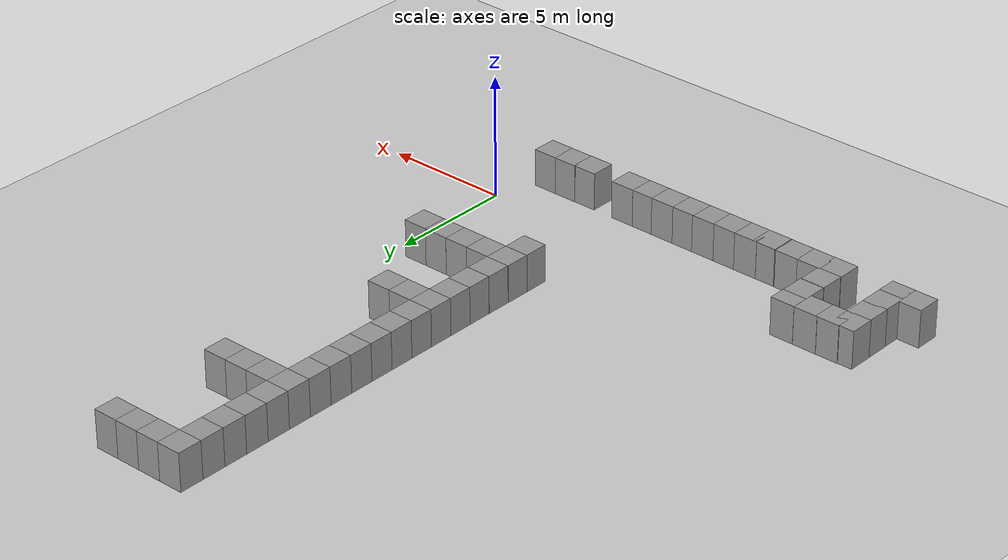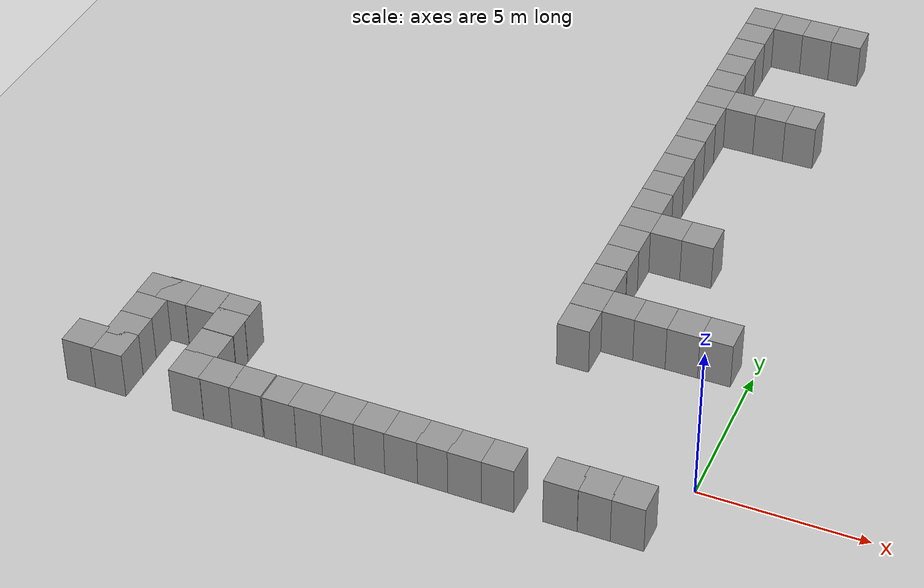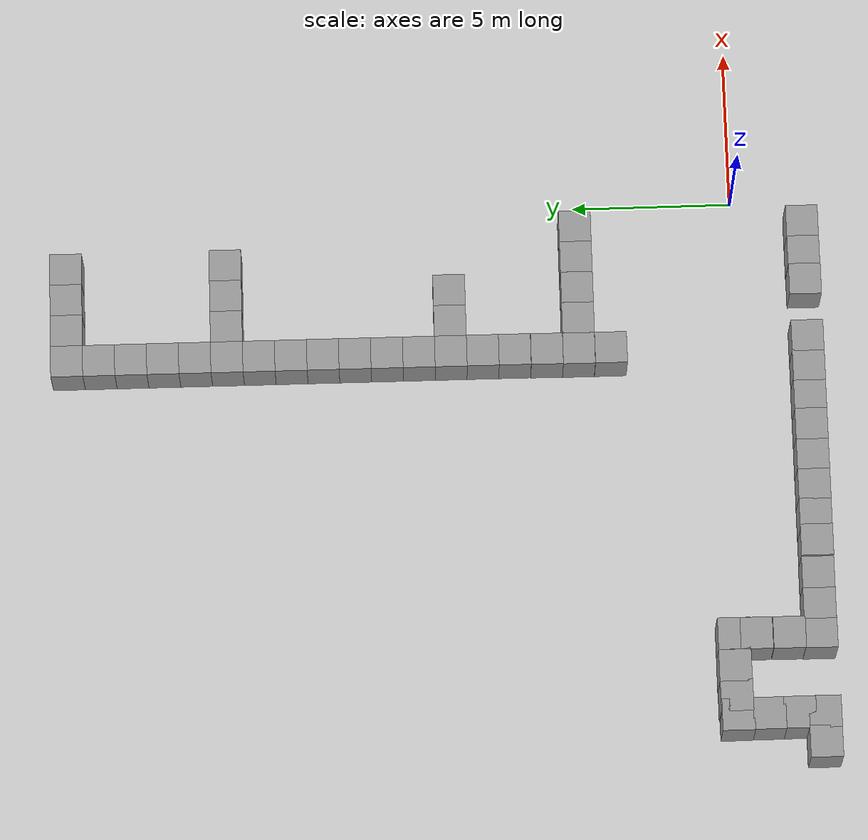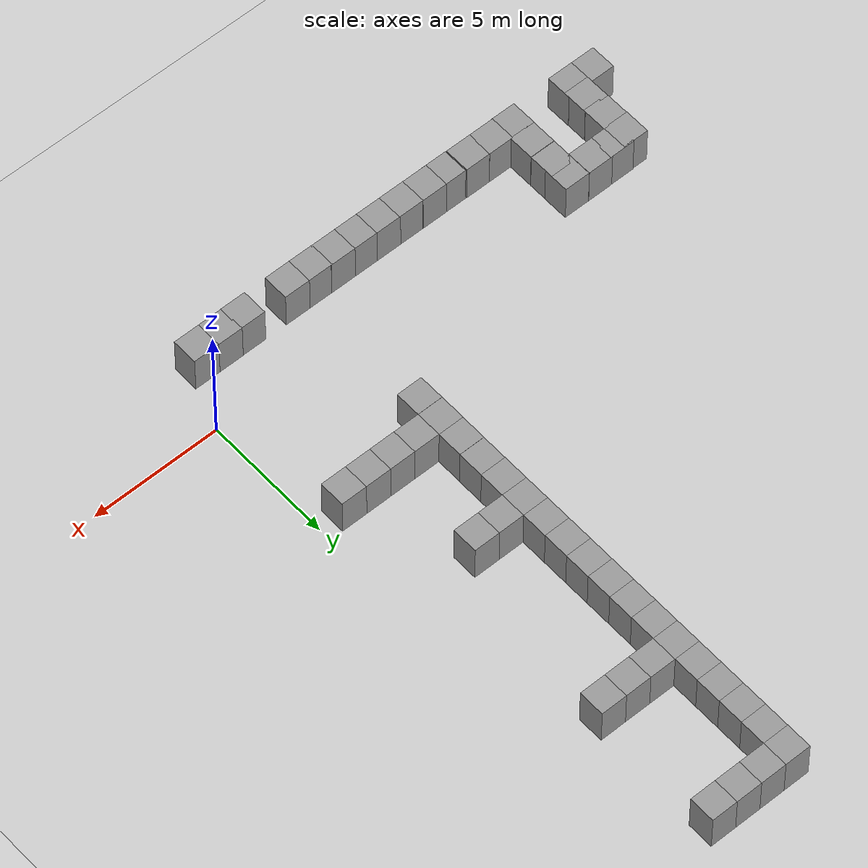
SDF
<sdf version="1.4">
 <world name="default">
  <model name="ground_plane">
   <static>1</static>
   <link name="link">
    <collision name="collision">
     <geometry><plane><normal>0 0 1</normal><size>100 100</size></plane></geometry>
     <surface><friction><ode><mu>100</mu><mu2>50</mu2></ode></friction></surface>
    </collision>
    <visual name="visual">
     <cast_shadows>0</cast_shadows>
     <geometry><plane><normal>0 0 1</normal><size>100 100</size></plane></geometry>
     <material>
      <script><uri>file://media/materials/scripts/gazebo.material</uri><name>Gazebo/Grey</name></script>
     </material>
    </visual>
    <velocity_decay><linear>0</linear><angular>0</angular></velocity_decay>
   </link>
  </model>
  <model name="unit_box_1">
   <pose>-5.01661 4.99523 0.5 0 -0 0.000223</pose>
   <static>1</static>
   <link name="link">
    <inertial>
     <mass>1</mass>
     <inertia><ixx>1</ixx><ixy>0</ixy><ixz>0</ixz><iyy>1</iyy><iyz>0</iyz><izz>1</izz></inertia>
    </inertial>
    <collision name="collision"><geometry><box><size>1 1 2</size></box></geometry></collision>
    <visual name="visual">
     <geometry><box><size>1 1 2</size></box></geometry>
     <material>
      <script><uri>file://media/materials/scripts/gazebo.material</uri><name>Gazebo/Grey</name></script>
     </material>
    </visual>
    <velocity_decay><linear>0</linear><angular>0</angular></velocity_decay>
   </link>
   <static>0</static>
  </model>
  <model name="unit_box_2">
   <pose>-4.01641 4.99001 0.5 0 -0 3e-05</pose>
   <static>1</static>
   <link name="link">
    <inertial>
     <mass>1</mass>
     <inertia><ixx>1</ixx><ixy>0</ixy><ixz>0</ixz><iyy>1</iyy><iyz>0</iyz><izz>1</izz></inertia>
    </inertial>
    <collision name="collision"><geometry><box><size>1 1 2</size></box></geometry></collision>
    <visual name="visual">
     <geometry><box><size>1 1 2</size></box></geometry>
     <material>
      <script><uri>file://media/materials/scripts/gazebo.material</uri><name>Gazebo/Grey</name></script>
     </material>
    </visual>
    <velocity_decay><linear>0</linear><angular>0</angular></velocity_decay>
   </link>
   <static>0</static>
  </model>
  <model name="unit_box_3">
   <pose>-3.0164 4.98791 0.5 0 -0 2.1e-05</pose>
   <static>1</static>
   <link name="link">
    <inertial>
     <mass>1</mass>
     <inertia><ixx>1</ixx><ixy>0</ixy><ixz>0</ixz><iyy>1</iyy><iyz>0</iyz><izz>1</izz></inertia>
    </inertial>
    <collision name="collision"><geometry><box><size>1 1 2</size></box></geometry></collision>
    <visual name="visual">
     <geometry><box><size>1 1 2</size></box></geometry>
     <material>
      <script><uri>file://media/materials/scripts/gazebo.material</uri><name>Gazebo/Grey</name></script>
     </material>
    </visual>
    <velocity_decay><linear>0</linear><angular>0</angular></velocity_decay>
   </link>
   <static>0</static>
  </model>
  <model name="unit_box_4">
   <pose>-2.01625 4.98914 0.5 0 0 -0.000278</pose>
   <static>1</static>
   <link name="link">
    <inertial>
     <mass>1</mass>
     <inertia><ixx>1</ixx><ixy>0</ixy><ixz>0</ixz><iyy>1</iyy><iyz>0</iyz><izz>1</izz></inertia>
    </inertial>
    <collision name="collision"><geometry><box><size>1 1 2</size></box></geometry></collision>
    <visual name="visual">
     <geometry><box><size>1 1 2</size></box></geometry>
     <material>
      <script><uri>file://media/materials/scripts/gazebo.material</uri><name>Gazebo/Grey</name></script>
     </material>
    </visual>
    <velocity_decay><linear>0</linear><angular>0</angular></velocity_decay>
   </link>
   <static>0</static>
  </model>
  <model name="unit_box_5">
   <pose>-1.01623 4.98884 0.5 0 0 -0.000319</pose>
   <static>1</static>
   <link name="link">
    <inertial>
     <mass>1</mass>
     <inertia><ixx>1</ixx><ixy>0</ixy><ixz>0</ixz><iyy>1</iyy><iyz>0</iyz><izz>1</izz></inertia>
    </inertial>
    <collision name="collision"><geometry><box><size>1 1 2</size></box></geometry></collision>
    <visual name="visual">
     <geometry><box><size>1 1 2</size></box></geometry>
     <material>
      <script><uri>file://media/materials/scripts/gazebo.material</uri><name>Gazebo/Grey</name></script>
     </material>
    </visual>
    <velocity_decay><linear>0</linear><angular>0</angular></velocity_decay>
   </link>
   <static>0</static>
  </model>
  <model name="unit_box_10">
   <pose>-1.02213 -2.15618 0.5 0 0 -0.000527</pose>
   <static>1</static>
   <link name="link">
    <inertial>
     <mass>1</mass>
     <inertia><ixx>1</ixx><ixy>0</ixy><ixz>0</ixz><iyy>1</iyy><iyz>0</iyz><izz>1</izz></inertia>
    </inertial>
    <collision name="collision"><geometry><box><size>1 1 2</size></box></geometry></collision>
    <visual name="visual">
     <geometry><box><size>1 1 2</size></box></geometry>
     <material>
      <script><uri>file://media/materials/scripts/gazebo.material</uri><name>Gazebo/Grey</name></script>
     </material>
    </visual>
    <velocity_decay><linear>0</linear><angular>0</angular></velocity_decay>
   </link>
   <static>0</static>
  </model>
  <model name="unit_box_11">
   <pose>-1.98593 -2.15642 0.5 0 0 -0.000466</pose>
   <static>1</static>
   <link name="link">
    <inertial>
     <mass>1</mass>
     <inertia><ixx>1</ixx><ixy>0</ixy><ixz>0</ixz><iyy>1</iyy><iyz>0</iyz><izz>1</izz></inertia>
    </inertial>
    <collision name="collision"><geometry><box><size>1 1 2</size></box></geometry></collision>
    <visual name="visual">
     <geometry><box><size>1 1 2</size></box></geometry>
     <material>
      <script><uri>file://media/materials/scripts/gazebo.material</uri><name>Gazebo/Grey</name></script>
     </material>
    </visual>
    <velocity_decay><linear>0</linear><angular>0</angular></velocity_decay>
   </link>
   <static>0</static>
  </model>
  <model name="unit_box_12">
   <pose>-2.93582 -2.16533 0.5 0 0 -0.000581</pose>
   <static>1</static>
   <link name="link">
    <inertial>
     <mass>1</mass>
     <inertia><ixx>1</ixx><ixy>0</ixy><ixz>0</ixz><iyy>1</iyy><iyz>0</iyz><izz>1</izz></inertia>
    </inertial>
    <collision name="collision"><geometry><box><size>1 1 2</size></box></geometry></collision>
    <visual name="visual">
     <geometry><box><size>1 1 2</size></box></geometry>
     <material>
      <script><uri>file://media/materials/scripts/gazebo.material</uri><name>Gazebo/Grey</name></script>
     </material>
    </visual>
    <velocity_decay><linear>0</linear><angular>0</angular></velocity_decay>
   </link>
   <static>0</static>
  </model>
  <model name="unit_box_14">
   <pose>-5.7489 -2.16131 0.5 0 0 -0.000611</pose>
   <static>1</static>
   <link name="link">
    <inertial>
     <mass>1</mass>
     <inertia><ixx>1</ixx><ixy>0</ixy><ixz>0</ixz><iyy>1</iyy><iyz>0</iyz><izz>1</izz></inertia>
    </inertial>
    <collision name="collision"><geometry><box><size>1 1 2</size></box></geometry></collision>
    <visual name="visual">
     <geometry><box><size>1 1 2</size></box></geometry>
     <material>
      <script><uri>file://media/materials/scripts/gazebo.material</uri><name>Gazebo/Grey</name></script>
     </material>
    </visual>
    <velocity_decay><linear>0</linear><angular>0</angular></velocity_decay>
   </link>
   <static>0</static>
  </model>
  <model name="unit_box_18">
   <pose>-13.4012 -2.14358 0.5 0 0 -1.5e-05</pose>
   <static>1</static>
   <link name="link">
    <inertial>
     <mass>1</mass>
     <inertia><ixx>1</ixx><ixy>0</ixy><ixz>0</ixz><iyy>1</iyy><iyz>0</iyz><izz>1</izz></inertia>
    </inertial>
    <collision name="collision"><geometry><box><size>1 1 2</size></box></geometry></collision>
    <visual name="visual">
     <geometry><box><size>1 1 2</size></box></geometry>
     <material>
      <script><uri>file://media/materials/scripts/gazebo.material</uri><name>Gazebo/Grey</name></script>
     </material>
    </visual>
    <velocity_decay><linear>0</linear><angular>0</angular></velocity_decay>
   </link>
   <static>0</static>
  </model>
  <model name="unit_box_19">
   <pose>-12.4285 -2.14498 0.5 0 0 -1e-05</pose>
   <static>1</static>
   <link name="link">
    <inertial>
     <mass>1</mass>
     <inertia><ixx>1</ixx><ixy>0</ixy><ixz>0</ixz><iyy>1</iyy><iyz>0</iyz><izz>1</izz></inertia>
    </inertial>
    <collision name="collision"><geometry><box><size>1 1 2</size></box></geometry></collision>
    <visual name="visual">
     <geometry><box><size>1 1 2</size></box></geometry>
     <material>
      <script><uri>file://media/materials/scripts/gazebo.material</uri><name>Gazebo/Grey</name></script>
     </material>
    </visual>
    <velocity_decay><linear>0</linear><angular>0</angular></velocity_decay>
   </link>
   <static>0</static>
  </model>
  <model name="unit_box_20">
   <pose>-7.65677 -2.15628 0.5 0 0 -1e-05</pose>
   <static>1</static>
   <link name="link">
    <inertial>
     <mass>1</mass>
     <inertia><ixx>1</ixx><ixy>0</ixy><ixz>0</ixz><iyy>1</iyy><iyz>0</iyz><izz>1</izz></inertia>
    </inertial>
    <collision name="collision"><geometry><box><size>1 1 2</size></box></geometry></collision>
    <visual name="visual">
     <geometry><box><size>1 1 2</size></box></geometry>
     <material>
      <script><uri>file://media/materials/scripts/gazebo.material</uri><name>Gazebo/Grey</name></script>
     </material>
    </visual>
    <velocity_decay><linear>0</linear><angular>0</angular></velocity_decay>
   </link>
   <static>0</static>
  </model>
  <model name="unit_box_21">
   <pose>-4.78792 -2.16044 0.5 0 0 -1.2e-05</pose>
   <static>1</static>
   <link name="link">
    <inertial>
     <mass>1</mass>
     <inertia><ixx>1</ixx><ixy>0</ixy><ixz>0</ixz><iyy>1</iyy><iyz>0</iyz><izz>1</izz></inertia>
    </inertial>
    <collision name="collision"><geometry><box><size>1 1 2</size></box></geometry></collision>
    <visual name="visual">
     <geometry><box><size>1 1 2</size></box></geometry>
     <material>
      <script><uri>file://media/materials/scripts/gazebo.material</uri><name>Gazebo/Grey</name></script>
     </material>
    </visual>
    <velocity_decay><linear>0</linear><angular>0</angular></velocity_decay>
   </link>
   <static>0</static>
  </model>
  <model name="unit_box_40">
   <pose>-5.01481 3.99235 0.5 0 -0 0.003225</pose>
   <static>1</static>
   <link name="link">
    <inertial>
     <mass>1</mass>
     <inertia><ixx>1</ixx><ixy>0</ixy><ixz>0</ixz><iyy>1</iyy><iyz>0</iyz><izz>1</izz></inertia>
    </inertial>
    <collision name="collision"><geometry><box><size>1 1 2</size></box></geometry></collision>
    <visual name="visual">
     <geometry><box><size>1 1 2</size></box></geometry>
     <material>
      <script><uri>file://media/materials/scripts/gazebo.material</uri><name>Gazebo/Grey</name></script>
     </material>
    </visual>
    <velocity_decay><linear>0</linear><angular>0</angular></velocity_decay>
   </link>
   <static>0</static>
  </model>
  <model name="unit_box_44">
   <pose>-17.7736 -2.1615 0.5 0 -0 0.000932</pose>
   <static>1</static>
   <link name="link">
    <inertial>
     <mass>1</mass>
     <inertia><ixx>1</ixx><ixy>0</ixy><ixz>0</ixz><iyy>1</iyy><iyz>0</iyz><izz>1</izz></inertia>
    </inertial>
    <collision name="collision"><geometry><box><size>1 1 2</size></box></geometry></collision>
    <visual name="visual">
     <geometry><box><size>1 1 2</size></box></geometry>
     <material>
      <script><uri>file://media/materials/scripts/gazebo.material</uri><name>Gazebo/Grey</name></script>
     </material>
    </visual>
    <velocity_decay><linear>0</linear><angular>0</angular></velocity_decay>
   </link>
   <static>0</static>
  </model>
  <model name="unit_box_45">
   <pose>-16.8401 -2.16548 0.5 0 -0 0.000893</pose>
   <static>1</static>
   <link name="link">
    <inertial>
     <mass>1</mass>
     <inertia><ixx>1</ixx><ixy>0</ixy><ixz>0</ixz><iyy>1</iyy><iyz>0</iyz><izz>1</izz></inertia>
    </inertial>
    <collision name="collision"><geometry><box><size>1 1 2</size></box></geometry></collision>
    <visual name="visual">
     <geometry><box><size>1 1 2</size></box></geometry>
     <material>
      <script><uri>file://media/materials/scripts/gazebo.material</uri><name>Gazebo/Grey</name></script>
     </material>
    </visual>
    <velocity_decay><linear>0</linear><angular>0</angular></velocity_decay>
   </link>
   <static>0</static>
  </model>
  <model name="unit_box_46">
   <pose>-16.8434 -1.38674 0.5 0 -0 0.000802</pose>
   <static>1</static>
   <link name="link">
    <inertial>
     <mass>1</mass>
     <inertia><ixx>1</ixx><ixy>0</ixy><ixz>0</ixz><iyy>1</iyy><iyz>0</iyz><izz>1</izz></inertia>
    </inertial>
    <collision name="collision"><geometry><box><size>1 1 2</size></box></geometry></collision>
    <visual name="visual">
     <geometry><box><size>1 1 2</size></box></geometry>
     <material>
      <script><uri>file://media/materials/scripts/gazebo.material</uri><name>Gazebo/Grey</name></script>
     </material>
    </visual>
    <velocity_decay><linear>0</linear><angular>0</angular></velocity_decay>
   </link>
   <static>0</static>
  </model>
  <model name="unit_box_47">
   <pose>-15.3131 0.534187 0.5 0 -0 0.000729</pose>
   <static>1</static>
   <link name="link">
    <inertial>
     <mass>1</mass>
     <inertia><ixx>1</ixx><ixy>0</ixy><ixz>0</ixz><iyy>1</iyy><iyz>0</iyz><izz>1</izz></inertia>
    </inertial>
    <collision name="collision"><geometry><box><size>1 1 2</size></box></geometry></collision>
    <visual name="visual">
     <geometry><box><size>1 1 2</size></box></geometry>
     <material>
      <script><uri>file://media/materials/scripts/gazebo.material</uri><name>Gazebo/Grey</name></script>
     </material>
    </visual>
    <velocity_decay><linear>0</linear><angular>0</angular></velocity_decay>
   </link>
   <static>0</static>
  </model>
  <model name="unit_box_48">
   <pose>-16.2487 0.525396 0.5 0 0 -0.000119</pose>
   <static>1</static>
   <link name="link">
    <inertial>
     <mass>1</mass>
     <inertia><ixx>1</ixx><ixy>0</ixy><ixz>0</ixz><iyy>1</iyy><iyz>0</iyz><izz>1</izz></inertia>
    </inertial>
    <collision name="collision"><geometry><box><size>1 1 2</size></box></geometry></collision>
    <visual name="visual">
     <geometry><box><size>1 1 2</size></box></geometry>
     <material>
      <script><uri>file://media/materials/scripts/gazebo.material</uri><name>Gazebo/Grey</name></script>
     </material>
    </visual>
    <velocity_decay><linear>0</linear><angular>0</angular></velocity_decay>
   </link>
   <static>0</static>
  </model>
  <model name="unit_box_49">
   <pose>-16.8494 -0.460464 0.5 0 0 -7.3e-05</pose>
   <static>1</static>
   <link name="link">
    <inertial>
     <mass>1</mass>
     <inertia><ixx>1</ixx><ixy>0</ixy><ixz>0</ixz><iyy>1</iyy><iyz>0</iyz><izz>1</izz></inertia>
    </inertial>
    <collision name="collision"><geometry><box><size>1 1 2</size></box></geometry></collision>
    <visual name="visual">
     <geometry><box><size>1 1 2</size></box></geometry>
     <material>
      <script><uri>file://media/materials/scripts/gazebo.material</uri><name>Gazebo/Grey</name></script>
     </material>
    </visual>
    <velocity_decay><linear>0</linear><angular>0</angular></velocity_decay>
   </link>
   <static>0</static>
  </model>
  <model name="unit_box_50">
   <pose>-16.8613 0.50095 0.5 0 0 -7.1e-05</pose>
   <static>1</static>
   <link name="link">
    <inertial>
     <mass>1</mass>
     <inertia><ixx>1</ixx><ixy>0</ixy><ixz>0</ixz><iyy>1</iyy><iyz>0</iyz><izz>1</izz></inertia>
    </inertial>
    <collision name="collision"><geometry><box><size>1 1 2</size></box></geometry></collision>
    <visual name="visual">
     <geometry><box><size>1 1 2</size></box></geometry>
     <material>
      <script><uri>file://media/materials/scripts/gazebo.material</uri><name>Gazebo/Grey</name></script>
     </material>
    </visual>
    <velocity_decay><linear>0</linear><angular>0</angular></velocity_decay>
   </link>
   <static>0</static>
  </model>
  <model name="unit_box_61">
   <pose>-5.0071 5.99581 0.5 0 0 -0.000452</pose>
   <static>1</static>
   <link name="link">
    <inertial>
     <mass>1</mass>
     <inertia><ixx>1</ixx><ixy>0</ixy><ixz>0</ixz><iyy>1</iyy><iyz>0</iyz><izz>1</izz></inertia>
    </inertial>
    <collision name="collision"><geometry><box><size>1 1 2</size></box></geometry></collision>
    <visual name="visual">
     <geometry><box><size>1 1 2</size></box></geometry>
     <material>
      <script><uri>file://media/materials/scripts/gazebo.material</uri><name>Gazebo/Grey</name></script>
     </material>
    </visual>
    <velocity_decay><linear>0</linear><angular>0</angular></velocity_decay>
   </link>
   <static>0</static>
  </model>
  <model name="unit_box_67">
   <pose>-5.00001 6.99999 0.5 0 -0 9e-06</pose>
   <static>1</static>
   <link name="link">
    <inertial>
     <mass>1</mass>
     <inertia><ixx>1</ixx><ixy>0</ixy><ixz>0</ixz><iyy>1</iyy><iyz>0</iyz><izz>1</izz></inertia>
    </inertial>
    <collision name="collision"><geometry><box><size>1 1 2</size></box></geometry></collision>
    <visual name="visual">
     <geometry><box><size>1 1 2</size></box></geometry>
     <material>
      <script><uri>file://media/materials/scripts/gazebo.material</uri><name>Gazebo/Grey</name></script>
     </material>
    </visual>
    <velocity_decay><linear>0</linear><angular>0</angular></velocity_decay>
   </link>
   <static>0</static>
  </model>
  <model name="unit_box_68">
   <pose>-5.00001 7.99999 0.5 0 -0 8e-06</pose>
   <static>1</static>
   <link name="link">
    <inertial>
     <mass>1</mass>
     <inertia><ixx>1</ixx><ixy>0</ixy><ixz>0</ixz><iyy>1</iyy><iyz>0</iyz><izz>1</izz></inertia>
    </inertial>
    <collision name="collision"><geometry><box><size>1 1 2</size></box></geometry></collision>
    <visual name="visual">
     <geometry><box><size>1 1 2</size></box></geometry>
     <material>
      <script><uri>file://media/materials/scripts/gazebo.material</uri><name>Gazebo/Grey</name></script>
     </material>
    </visual>
    <velocity_decay><linear>0</linear><angular>0</angular></velocity_decay>
   </link>
   <static>0</static>
  </model>
  <model name="unit_box_69">
   <pose>-5 8.99999 0.5 0 -0 7e-06</pose>
   <static>1</static>
   <link name="link">
    <inertial>
     <mass>1</mass>
     <inertia><ixx>1</ixx><ixy>0</ixy><ixz>0</ixz><iyy>1</iyy><iyz>0</iyz><izz>1</izz></inertia>
    </inertial>
    <collision name="collision"><geometry><box><size>1 1 2</size></box></geometry></collision>
    <visual name="visual">
     <geometry><box><size>1 1 2</size></box></geometry>
     <material>
      <script><uri>file://media/materials/scripts/gazebo.material</uri><name>Gazebo/Grey</name></script>
     </material>
    </visual>
    <velocity_decay><linear>0</linear><angular>0</angular></velocity_decay>
   </link>
   <static>0</static>
  </model>
  <model name="unit_box_70">
   <pose>-4 9 0.5 0 -0 7e-06</pose>
   <static>1</static>
   <link name="link">
    <inertial>
     <mass>1</mass>
     <inertia><ixx>1</ixx><ixy>0</ixy><ixz>0</ixz><iyy>1</iyy><iyz>0</iyz><izz>1</izz></inertia>
    </inertial>
    <collision name="collision"><geometry><box><size>1 1 2</size></box></geometry></collision>
    <visual name="visual">
     <geometry><box><size>1 1 2</size></box></geometry>
     <material>
      <script><uri>file://media/materials/scripts/gazebo.material</uri><name>Gazebo/Grey</name></script>
     </material>
    </visual>
    <velocity_decay><linear>0</linear><angular>0</angular></velocity_decay>
   </link>
   <static>0</static>
  </model>
  <model name="unit_box_71">
   <pose>-2.99999 9 0.5 0 -0 2e-06</pose>
   <static>1</static>
   <link name="link">
    <inertial>
     <mass>1</mass>
     <inertia><ixx>1</ixx><ixy>0</ixy><ixz>0</ixz><iyy>1</iyy><iyz>0</iyz><izz>1</izz></inertia>
    </inertial>
    <collision name="collision"><geometry><box><size>1 1 2</size></box></geometry></collision>
    <visual name="visual">
     <geometry><box><size>1 1 2</size></box></geometry>
     <material>
      <script><uri>file://media/materials/scripts/gazebo.material</uri><name>Gazebo/Grey</name></script>
     </material>
    </visual>
    <velocity_decay><linear>0</linear><angular>0</angular></velocity_decay>
   </link>
   <static>0</static>
  </model>
  <model name="unit_box_72">
   <pose>-4.99999 9.99999 0.5 0 -0 7e-06</pose>
   <static>1</static>
   <link name="link">
    <inertial>
     <mass>1</mass>
     <inertia><ixx>1</ixx><ixy>0</ixy><ixz>0</ixz><iyy>1</iyy><iyz>0</iyz><izz>1</izz></inertia>
    </inertial>
    <collision name="collision"><geometry><box><size>1 1 2</size></box></geometry></collision>
    <visual name="visual">
     <geometry><box><size>1 1 2</size></box></geometry>
     <material>
      <script><uri>file://media/materials/scripts/gazebo.material</uri><name>Gazebo/Grey</name></script>
     </material>
    </visual>
    <velocity_decay><linear>0</linear><angular>0</angular></velocity_decay>
   </link>
   <static>0</static>
  </model>
  <model name="unit_box_73">
   <pose>-5.00001 11 0.5 0 -0 8e-06</pose>
   <static>1</static>
   <link name="link">
    <inertial>
     <mass>1</mass>
     <inertia><ixx>1</ixx><ixy>0</ixy><ixz>0</ixz><iyy>1</iyy><iyz>0</iyz><izz>1</izz></inertia>
    </inertial>
    <collision name="collision"><geometry><box><size>1 1 2</size></box></geometry></collision>
    <visual name="visual">
     <geometry><box><size>1 1 2</size></box></geometry>
     <material>
      <script><uri>file://media/materials/scripts/gazebo.material</uri><name>Gazebo/Grey</name></script>
     </material>
    </visual>
    <velocity_decay><linear>0</linear><angular>0</angular></velocity_decay>
   </link>
   <static>0</static>
  </model>
  <model name="unit_box_74">
   <pose>-5.00001 12 0.5 0 -0 8e-06</pose>
   <static>1</static>
   <link name="link">
    <inertial>
     <mass>1</mass>
     <inertia><ixx>1</ixx><ixy>0</ixy><ixz>0</ixz><iyy>1</iyy><iyz>0</iyz><izz>1</izz></inertia>
    </inertial>
    <collision name="collision"><geometry><box><size>1 1 2</size></box></geometry></collision>
    <visual name="visual">
     <geometry><box><size>1 1 2</size></box></geometry>
     <material>
      <script><uri>file://media/materials/scripts/gazebo.material</uri><name>Gazebo/Grey</name></script>
     </material>
    </visual>
    <velocity_decay><linear>0</linear><angular>0</angular></velocity_decay>
   </link>
   <static>0</static>
  </model>
  <model name="unit_box_75">
   <pose>-5 13 0.5 0 -0 5e-06</pose>
   <static>1</static>
   <link name="link">
    <inertial>
     <mass>1</mass>
     <inertia><ixx>1</ixx><ixy>0</ixy><ixz>0</ixz><iyy>1</iyy><iyz>0</iyz><izz>1</izz></inertia>
    </inertial>
    <collision name="collision"><geometry><box><size>1 1 2</size></box></geometry></collision>
    <visual name="visual">
     <geometry><box><size>1 1 2</size></box></geometry>
     <material>
      <script><uri>file://media/materials/scripts/gazebo.material</uri><name>Gazebo/Grey</name></script>
     </material>
    </visual>
    <velocity_decay><linear>0</linear><angular>0</angular></velocity_decay>
   </link>
   <static>0</static>
  </model>
  <model name="unit_box_76">
   <pose>-5 14 0.5 0 -0 6e-06</pose>
   <static>1</static>
   <link name="link">
    <inertial>
     <mass>1</mass>
     <inertia><ixx>1</ixx><ixy>0</ixy><ixz>0</ixz><iyy>1</iyy><iyz>0</iyz><izz>1</izz></inertia>
    </inertial>
    <collision name="collision"><geometry><box><size>1 1 2</size></box></geometry></collision>
    <visual name="visual">
     <geometry><box><size>1 1 2</size></box></geometry>
     <material>
      <script><uri>file://media/materials/scripts/gazebo.material</uri><name>Gazebo/Grey</name></script>
     </material>
    </visual>
    <velocity_decay><linear>0</linear><angular>0</angular></velocity_decay>
   </link>
   <static>0</static>
  </model>
  <model name="unit_box_77">
   <pose>-4.99999 15 0.5 0 -0 7e-06</pose>
   <static>1</static>
   <link name="link">
    <inertial>
     <mass>1</mass>
     <inertia><ixx>1</ixx><ixy>0</ixy><ixz>0</ixz><iyy>1</iyy><iyz>0</iyz><izz>1</izz></inertia>
    </inertial>
    <collision name="collision"><geometry><box><size>1 1 2</size></box></geometry></collision>
    <visual name="visual">
     <geometry><box><size>1 1 2</size></box></geometry>
     <material>
      <script><uri>file://media/materials/scripts/gazebo.material</uri><name>Gazebo/Grey</name></script>
     </material>
    </visual>
    <velocity_decay><linear>0</linear><angular>0</angular></velocity_decay>
   </link>
   <static>0</static>
  </model>
  <model name="unit_box_78">
   <pose>-5 16 0.5 0 -0 7e-06</pose>
   <static>1</static>
   <link name="link">
    <inertial>
     <mass>1</mass>
     <inertia><ixx>1</ixx><ixy>0</ixy><ixz>0</ixz><iyy>1</iyy><iyz>0</iyz><izz>1</izz></inertia>
    </inertial>
    <collision name="collision"><geometry><box><size>1 1 2</size></box></geometry></collision>
    <visual name="visual">
     <geometry><box><size>1 1 2</size></box></geometry>
     <material>
      <script><uri>file://media/materials/scripts/gazebo.material</uri><name>Gazebo/Grey</name></script>
     </material>
    </visual>
    <velocity_decay><linear>0</linear><angular>0</angular></velocity_decay>
   </link>
   <static>0</static>
  </model>
  <model name="unit_box_79">
   <pose>-4.99997 17 0.5 0 -0 6e-06</pose>
   <static>1</static>
   <link name="link">
    <inertial>
     <mass>1</mass>
     <inertia><ixx>1</ixx><ixy>0</ixy><ixz>0</ixz><iyy>1</iyy><iyz>0</iyz><izz>1</izz></inertia>
    </inertial>
    <collision name="collision"><geometry><box><size>1 1 2</size></box></geometry></collision>
    <visual name="visual">
     <geometry><box><size>1 1 2</size></box></geometry>
     <material>
      <script><uri>file://media/materials/scripts/gazebo.material</uri><name>Gazebo/Grey</name></script>
     </material>
    </visual>
    <velocity_decay><linear>0</linear><angular>0</angular></velocity_decay>
   </link>
   <static>0</static>
  </model>
  <model name="unit_box_80">
   <pose>-4.99997 18 0.5 0 -0 3e-06</pose>
   <static>1</static>
   <link name="link">
    <inertial>
     <mass>1</mass>
     <inertia><ixx>1</ixx><ixy>0</ixy><ixz>0</ixz><iyy>1</iyy><iyz>0</iyz><izz>1</izz></inertia>
    </inertial>
    <collision name="collision"><geometry><box><size>1 1 2</size></box></geometry></collision>
    <visual name="visual">
     <geometry><box><size>1 1 2</size></box></geometry>
     <material>
      <script><uri>file://media/materials/scripts/gazebo.material</uri><name>Gazebo/Grey</name></script>
     </material>
    </visual>
    <velocity_decay><linear>0</linear><angular>0</angular></velocity_decay>
   </link>
   <static>0</static>
  </model>
  <model name="unit_box_81">
   <pose>-4 16 0.5 0 -0 7e-06</pose>
   <static>1</static>
   <link name="link">
    <inertial>
     <mass>1</mass>
     <inertia><ixx>1</ixx><ixy>0</ixy><ixz>0</ixz><iyy>1</iyy><iyz>0</iyz><izz>1</izz></inertia>
    </inertial>
    <collision name="collision"><geometry><box><size>1 1 2</size></box></geometry></collision>
    <visual name="visual">
     <geometry><box><size>1 1 2</size></box></geometry>
     <material>
      <script><uri>file://media/materials/scripts/gazebo.material</uri><name>Gazebo/Grey</name></script>
     </material>
    </visual>
    <velocity_decay><linear>0</linear><angular>0</angular></velocity_decay>
   </link>
   <static>0</static>
  </model>
  <model name="unit_box_82">
   <pose>-2.99999 16 0.5 0 -0 1.1e-05</pose>
   <static>1</static>
   <link name="link">
    <inertial>
     <mass>1</mass>
     <inertia><ixx>1</ixx><ixy>0</ixy><ixz>0</ixz><iyy>1</iyy><iyz>0</iyz><izz>1</izz></inertia>
    </inertial>
    <collision name="collision"><geometry><box><size>1 1 2</size></box></geometry></collision>
    <visual name="visual">
     <geometry><box><size>1 1 2</size></box></geometry>
     <material>
      <script><uri>file://media/materials/scripts/gazebo.material</uri><name>Gazebo/Grey</name></script>
     </material>
    </visual>
    <velocity_decay><linear>0</linear><angular>0</angular></velocity_decay>
   </link>
   <static>0</static>
  </model>
  <model name="unit_box_83">
   <pose>-1.99999 16 0.5 0 -0 1.1e-05</pose>
   <static>1</static>
   <link name="link">
    <inertial>
     <mass>1</mass>
     <inertia><ixx>1</ixx><ixy>0</ixy><ixz>0</ixz><iyy>1</iyy><iyz>0</iyz><izz>1</izz></inertia>
    </inertial>
    <collision name="collision"><geometry><box><size>1 1 2</size></box></geometry></collision>
    <visual name="visual">
     <geometry><box><size>1 1 2</size></box></geometry>
     <material>
      <script><uri>file://media/materials/scripts/gazebo.material</uri><name>Gazebo/Grey</name></script>
     </material>
    </visual>
    <velocity_decay><linear>0</linear><angular>0</angular></velocity_decay>
   </link>
   <static>0</static>
  </model>
  <model name="unit_box_96">
   <pose>-4.99997 19 0.5 0 -0 1e-06</pose>
   <static>1</static>
   <link name="link">
    <inertial>
     <mass>1</mass>
     <inertia><ixx>1</ixx><ixy>0</ixy><ixz>0</ixz><iyy>1</iyy><iyz>0</iyz><izz>1</izz></inertia>
    </inertial>
    <collision name="collision"><geometry><box><size>1 1 2</size></box></geometry></collision>
    <visual name="visual">
     <geometry><box><size>1 1 2</size></box></geometry>
     <material>
      <script><uri>file://media/materials/scripts/gazebo.material</uri><name>Gazebo/Grey</name></script>
     </material>
    </visual>
    <velocity_decay><linear>0</linear><angular>0</angular></velocity_decay>
   </link>
   <static>0</static>
  </model>
  <model name="unit_box_97">
   <pose>-4.99997 20 0.5 0 -0 1e-06</pose>
   <static>1</static>
   <link name="link">
    <inertial>
     <mass>1</mass>
     <inertia><ixx>1</ixx><ixy>0</ixy><ixz>0</ixz><iyy>1</iyy><iyz>0</iyz><izz>1</izz></inertia>
    </inertial>
    <collision name="collision"><geometry><box><size>1 1 2</size></box></geometry></collision>
    <visual name="visual">
     <geometry><box><size>1 1 2</size></box></geometry>
     <material>
      <script><uri>file://media/materials/scripts/gazebo.material</uri><name>Gazebo/Grey</name></script>
     </material>
    </visual>
    <velocity_decay><linear>0</linear><angular>0</angular></velocity_decay>
   </link>
   <static>0</static>
  </model>
  <model name="unit_box_98">
   <pose>-5.00001 21 0.5 0 -0 0</pose>
   <static>1</static>
   <link name="link">
    <inertial>
     <mass>1</mass>
     <inertia><ixx>1</ixx><ixy>0</ixy><ixz>0</ixz><iyy>1</iyy><iyz>0</iyz><izz>1</izz></inertia>
    </inertial>
    <collision name="collision"><geometry><box><size>1 1 2</size></box></geometry></collision>
    <visual name="visual">
     <geometry><box><size>1 1 2</size></box></geometry>
     <material>
      <script><uri>file://media/materials/scripts/gazebo.material</uri><name>Gazebo/Grey</name></script>
     </material>
    </visual>
    <velocity_decay><linear>0</linear><angular>0</angular></velocity_decay>
   </link>
   <static>0</static>
  </model>
  <model name="unit_box_99">
   <pose>-4.00001 21 0.5 0 0 -1e-06</pose>
   <static>1</static>
   <link name="link">
    <inertial>
     <mass>1</mass>
     <inertia><ixx>1</ixx><ixy>0</ixy><ixz>0</ixz><iyy>1</iyy><iyz>0</iyz><izz>1</izz></inertia>
    </inertial>
    <collision name="collision"><geometry><box><size>1 1 2</size></box></geometry></collision>
    <visual name="visual">
     <geometry><box><size>1 1 2</size></box></geometry>
     <material>
      <script><uri>file://media/materials/scripts/gazebo.material</uri><name>Gazebo/Grey</name></script>
     </material>
    </visual>
    <velocity_decay><linear>0</linear><angular>0</angular></velocity_decay>
   </link>
   <static>0</static>
  </model>
  <model name="unit_box_100">
   <pose>-3.00001 21 0.5 0 0 -1e-06</pose>
   <static>1</static>
   <link name="link">
    <inertial>
     <mass>1</mass>
     <inertia><ixx>1</ixx><ixy>0</ixy><ixz>0</ixz><iyy>1</iyy><iyz>0</iyz><izz>1</izz></inertia>
    </inertial>
    <collision name="collision"><geometry><box><size>1 1 2</size></box></geometry></collision>
    <visual name="visual">
     <geometry><box><size>1 1 2</size></box></geometry>
     <material>
      <script><uri>file://media/materials/scripts/gazebo.material</uri><name>Gazebo/Grey</name></script>
     </material>
    </visual>
    <velocity_decay><linear>0</linear><angular>0</angular></velocity_decay>
   </link>
   <static>0</static>
  </model>
  <model name="unit_box_101">
   <pose>-2.00001 21 0.5 0 0 -1e-06</pose>
   <static>1</static>
   <link name="link">
    <inertial>
     <mass>1</mass>
     <inertia><ixx>1</ixx><ixy>0</ixy><ixz>0</ixz><iyy>1</iyy><iyz>0</iyz><izz>1</izz></inertia>
    </inertial>
    <collision name="collision"><geometry><box><size>1 1 2</size></box></geometry></collision>
    <visual name="visual">
     <geometry><box><size>1 1 2</size></box></geometry>
     <material>
      <script><uri>file://media/materials/scripts/gazebo.material</uri><name>Gazebo/Grey</name></script>
     </material>
    </visual>
    <velocity_decay><linear>0</linear><angular>0</angular></velocity_decay>
   </link>
   <static>0</static>
  </model>
  <model name="unit_box_224">
   <pose>-11.3895 -2.15549 0.5 0 0 -4e-06</pose>
   <static>1</static>
   <link name="link">
    <inertial>
     <mass>1</mass>
     <inertia><ixx>1</ixx><ixy>0</ixy><ixz>0</ixz><iyy>1</iyy><iyz>0</iyz><izz>1</izz></inertia>
    </inertial>
    <collision name="collision"><geometry><box><size>1 1 2</size></box></geometry></collision>
    <visual name="visual">
     <geometry><box><size>1 1 2</size></box></geometry>
     <material>
      <script><uri>file://media/materials/scripts/gazebo.material</uri><name>Gazebo/Grey</name></script>
     </material>
    </visual>
    <velocity_decay><linear>0</linear><angular>0</angular></velocity_decay>
   </link>
   <static>0</static>
  </model>
  <model name="unit_box_225">
   <pose>-10.5661 -2.15234 0.5 0 0 -4e-06</pose>
   <static>1</static>
   <link name="link">
    <inertial>
     <mass>1</mass>
     <inertia><ixx>1</ixx><ixy>0</ixy><ixz>0</ixz><iyy>1</iyy><iyz>0</iyz><izz>1</izz></inertia>
    </inertial>
    <collision name="collision"><geometry><box><size>1 1 2</size></box></geometry></collision>
    <visual name="visual">
     <geometry><box><size>1 1 2</size></box></geometry>
     <material>
      <script><uri>file://media/materials/scripts/gazebo.material</uri><name>Gazebo/Grey</name></script>
     </material>
    </visual>
    <velocity_decay><linear>0</linear><angular>0</angular></velocity_decay>
   </link>
   <static>0</static>
  </model>
  <model name="unit_box_226">
   <pose>-9.57994 -2.15523 0.5 0 0 -3e-06</pose>
   <static>1</static>
   <link name="link">
    <inertial>
     <mass>1</mass>
     <inertia><ixx>1</ixx><ixy>0</ixy><ixz>0</ixz><iyy>1</iyy><iyz>0</iyz><izz>1</izz></inertia>
    </inertial>
    <collision name="collision"><geometry><box><size>1 1 2</size></box></geometry></collision>
    <visual name="visual">
     <geometry><box><size>1 1 2</size></box></geometry>
     <material>
      <script><uri>file://media/materials/scripts/gazebo.material</uri><name>Gazebo/Grey</name></script>
     </material>
    </visual>
    <velocity_decay><linear>0</linear><angular>0</angular></velocity_decay>
   </link>
   <static>0</static>
  </model>
  <model name="unit_box_230">
   <pose>-8.61395 -2.1545 0.5 0 0 -4e-06</pose>
   <static>1</static>
   <link name="link">
    <inertial>
     <mass>1</mass>
     <inertia><ixx>1</ixx><ixy>0</ixy><ixz>0</ixz><iyy>1</iyy><iyz>0</iyz><izz>1</izz></inertia>
    </inertial>
    <collision name="collision"><geometry><box><size>1 1 2</size></box></geometry></collision>
    <visual name="visual">
     <geometry><box><size>1 1 2</size></box></geometry>
     <material>
      <script><uri>file://media/materials/scripts/gazebo.material</uri><name>Gazebo/Grey</name></script>
     </material>
    </visual>
    <velocity_decay><linear>0</linear><angular>0</angular></velocity_decay>
   </link>
   <static>0</static>
  </model>
  <model name="unit_box_231">
   <pose>-6.69506 -2.15584 0.5 0 0 -5e-06</pose>
   <static>1</static>
   <link name="link">
    <inertial>
     <mass>1</mass>
     <inertia><ixx>1</ixx><ixy>0</ixy><ixz>0</ixz><iyy>1</iyy><iyz>0</iyz><izz>1</izz></inertia>
    </inertial>
    <collision name="collision"><geometry><box><size>1 1 2</size></box></geometry></collision>
    <visual name="visual">
     <geometry><box><size>1 1 2</size></box></geometry>
     <material>
      <script><uri>file://media/materials/scripts/gazebo.material</uri><name>Gazebo/Grey</name></script>
     </material>
    </visual>
    <velocity_decay><linear>0</linear><angular>0</angular></velocity_decay>
   </link>
   <static>0</static>
  </model>
  <model name="unit_box_241">
   <pose>-14.3086 0.532447 0.5 0 -0 0</pose>
   <static>1</static>
   <link name="link">
    <inertial>
     <mass>1</mass>
     <inertia><ixx>1</ixx><ixy>0</ixy><ixz>0</ixz><iyy>1</iyy><iyz>0</iyz><izz>1</izz></inertia>
    </inertial>
    <collision name="collision"><geometry><box><size>1 1 2</size></box></geometry></collision>
    <visual name="visual">
     <geometry><box><size>1 1 2</size></box></geometry>
     <material>
      <script><uri>file://media/materials/scripts/gazebo.material</uri><name>Gazebo/Grey</name></script>
     </material>
    </visual>
    <velocity_decay><linear>0</linear><angular>0</angular></velocity_decay>
   </link>
   <static>0</static>
  </model>
  <model name="unit_box_242">
   <pose>-14.3141 -0.159948 0.5 0 -0 0</pose>
   <static>1</static>
   <link name="link">
    <inertial>
     <mass>1</mass>
     <inertia><ixx>1</ixx><ixy>0</ixy><ixz>0</ixz><iyy>1</iyy><iyz>0</iyz><izz>1</izz></inertia>
    </inertial>
    <collision name="collision"><geometry><box><size>1 1 2</size></box></geometry></collision>
    <visual name="visual">
     <geometry><box><size>1 1 2</size></box></geometry>
     <material>
      <script><uri>file://media/materials/scripts/gazebo.material</uri><name>Gazebo/Grey</name></script>
     </material>
    </visual>
    <velocity_decay><linear>0</linear><angular>0</angular></velocity_decay>
   </link>
   <static>0</static>
  </model>
  <model name="unit_box_243">
   <pose>-14.3178 -1.17624 0.5 0 -0 0</pose>
   <static>1</static>
   <link name="link">
    <inertial>
     <mass>1</mass>
     <inertia><ixx>1</ixx><ixy>0</ixy><ixz>0</ixz><iyy>1</iyy><iyz>0</iyz><izz>1</izz></inertia>
    </inertial>
    <collision name="collision"><geometry><box><size>1 1 2</size></box></geometry></collision>
    <visual name="visual">
     <geometry><box><size>1 1 2</size></box></geometry>
     <material>
      <script><uri>file://media/materials/scripts/gazebo.material</uri><name>Gazebo/Grey</name></script>
     </material>
    </visual>
    <velocity_decay><linear>0</linear><angular>0</angular></velocity_decay>
   </link>
   <static>0</static>
  </model>
  <model name="unit_box_244">
   <pose>-14.3291 -2.15247 0.5 0 -0 0</pose>
   <static>1</static>
   <link name="link">
    <inertial>
     <mass>1</mass>
     <inertia><ixx>1</ixx><ixy>0</ixy><ixz>0</ixz><iyy>1</iyy><iyz>0</iyz><izz>1</izz></inertia>
    </inertial>
    <collision name="collision"><geometry><box><size>1 1 2</size></box></geometry></collision>
    <visual name="visual">
     <geometry><box><size>1 1 2</size></box></geometry>
     <material>
      <script><uri>file://media/materials/scripts/gazebo.material</uri><name>Gazebo/Grey</name></script>
     </material>
    </visual>
    <velocity_decay><linear>0</linear><angular>0</angular></velocity_decay>
   </link>
   <static>0</static>
  </model>
 </world>
</sdf>
